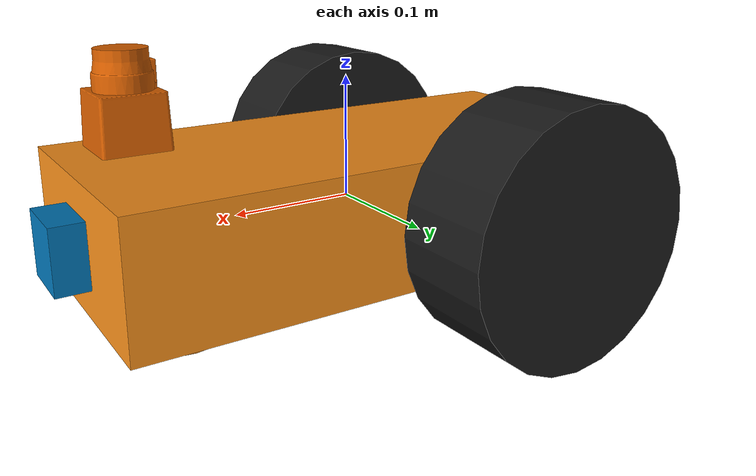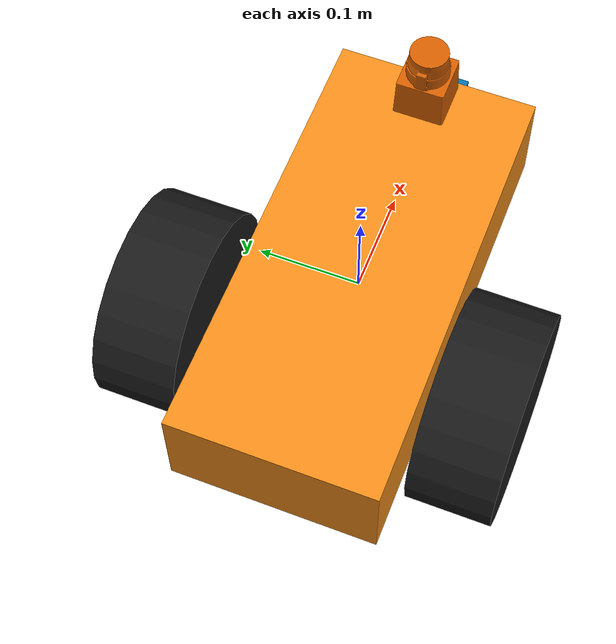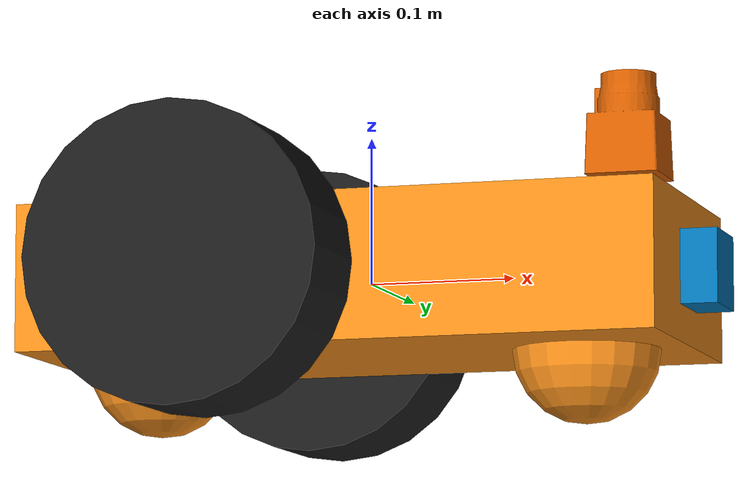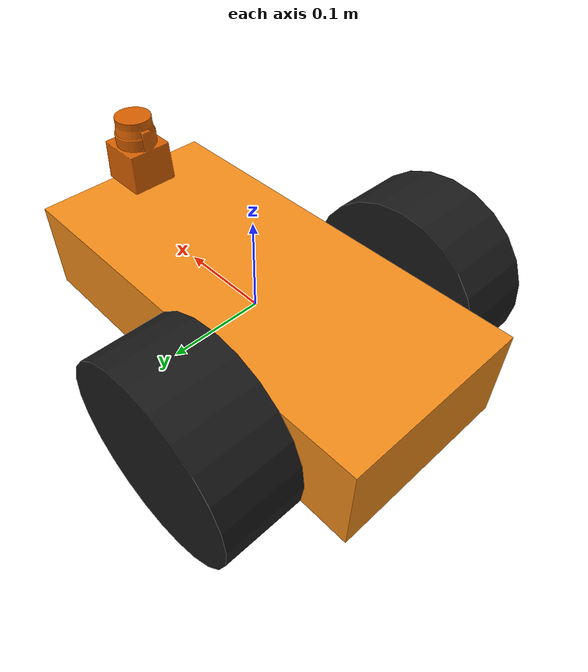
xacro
<?xml version='1.0'?>

<robot name="my_robot" xmlns:xacro="http://www.ros.org/wiki/xacro">
<xacro:include filename="$(find my_robot)/urdf/my_robot.gazebo" />

  <link name="robot_footprint"></link>

  <joint name="robot_footprint_joint" type="fixed">
    <origin xyz="0 0 0" rpy="0 0 0" />
    <parent link="robot_footprint"/>
    <child link="chassis" />
  </joint>

  <link name='chassis'>
    <pose>0 0 0.1 0 0 0</pose>

    <inertial>
      <mass value="15.0"/>
      <origin xyz="0.0 0 0" rpy=" 0 0 0"/>
      <inertia
          ixx="0.1" ixy="0" ixz="0"
          iyy="0.1" iyz="0"
          izz="0.1"
      />
    </inertial>

    <collision name='collision'>
      <origin xyz="0 0 0" rpy=" 0 0 0"/>
      <geometry>
        <box size=".44 .2 .1"/>
      </geometry>
    </collision>

    <visual name='chassis_visual'>
      <origin xyz="0 0 0" rpy=" 0 0 0"/>
      <geometry>
        <box size=".44 .2 .1"/>
      </geometry>
    </visual>

    <collision name='back_caster_collision'>
      <origin xyz="-0.15 0 -0.05" rpy=" 0 0 0"/>
      <geometry>
        <sphere radius="0.05"/>
      </geometry>
    </collision>

    <visual name='back_caster_visual'>
      <origin xyz="-0.15 0 -0.05" rpy=" 0 0 0"/>
      <geometry>
        <sphere radius="0.05"/>
      </geometry>
    </visual>

    <collision name='front_caster_collision'>
      <origin xyz="0.15 0 -0.05" rpy=" 0 0 0"/>
      <geometry>
        <sphere radius="0.05"/>
      </geometry>
    </collision>

    <visual name='front_caster_visual'>
      <origin xyz="0.15 0 -0.05" rpy=" 0 0 0"/>
      <geometry>
        <sphere radius="0.05"/>
      </geometry>
    </visual>

  </link>

  <gazebo reference="chassis">
    <material>Gazebo/Orange</material>
  </gazebo>

  <link name='left_wheel'>
   <pose>0 0 0.1 0 0 0</pose>
    <inertial>
      <mass value="5.0"/>
      <origin xyz="0.0 0 0" rpy=" 0 1.5707 1.5707"/>
      <inertia
          ixx="0.1" ixy="0" ixz="0"
          iyy="0.1" iyz="0"
          izz="0.1"
      />
    </inertial>

    <collision name='left_wheel_collision'>
      <origin xyz="0 0 0" rpy=" 0 1.5707 1.5707"/>
      <geometry>
        <cylinder radius="0.1" length="0.08"/>
      </geometry>
    </collision>

    <visual name='left_wheel_visual'>
      <origin xyz="0 0 0" rpy=" 0 1.5707 1.5707"/>
      <geometry>
        <cylinder radius="0.1" length="0.08"/>
      </geometry>
      <material name="black">
        <color rgba="0.1 0.1 0.1 1.0"/>
      </material>
    </visual>
  </link>

  <gazebo reference="left_wheel">
    <material>Gazebo/Black</material>
  </gazebo>

  <link name='right_wheel'>
   <pose>0 0 0.1 0 0 0</pose>
    <inertial>
      <mass value="5.0"/>
      <origin xyz="0.0 0 0" rpy=" 0 1.5707 1.5707"/>
      <inertia
          ixx="0.1" ixy="0" ixz="0"
          iyy="0.1" iyz="0"
          izz="0.1"
      />
    </inertial>

    <collision name='right_wheel_collision'>
      <origin xyz="0 0 0" rpy=" 0 1.5707 1.5707"/>
      <geometry>
        <cylinder radius="0.1" length="0.08"/>
      </geometry>
    </collision>

    <visual name='right_wheel_visual'>
      <origin xyz="0 0 0" rpy=" 0 1.5707 1.5707"/>
      <geometry>
        <cylinder radius="0.1" length="0.08"/>
      </geometry>
      <material name="black">
        <color rgba="0.1 0.1 0.1 1.0"/>
      </material>
    </visual>
  </link>

  <gazebo reference="right_wheel">
    <material>Gazebo/Black</material>
  </gazebo>

  <joint type="continuous" name="left_wheel_hinge">
    <origin xyz="-0.08 0.15 0" rpy="0 0 0"/>
    <child link="left_wheel"/>
    <parent link="chassis"/>
    <axis xyz="0 1 0" rpy="0 0 0"/>
    <limit effort="10000" velocity="1000"/>
    <dynamics damping="1.0" friction="1.0"/>
  </joint>

  <joint type="continuous" name="right_wheel_hinge">
    <origin xyz="-0.08 -0.15 0" rpy="0 0 0"/>
    <child link="right_wheel"/>
    <parent link="chassis"/>
    <axis xyz="0 1 0" rpy="0 0 0"/>
    <limit effort="10000" velocity="1000"/>
    <dynamics damping="1.0" friction="1.0"/>
  </joint>

  <link name='camera'>
   <pose>0 0 0 0 0 0</pose>
    <inertial>
      <mass value="0.1"/>
      <origin xyz="0 0 0" rpy=" 0 0 0"/>
      <inertia
          ixx="1e-6" ixy="0" ixz="0"
          iyy="1e-6" iyz="0"
          izz="1e-6"
      />
    <box_inertia sizeX="0.05" sizeY="0.05" sizeZ="0.05" mass="0.1">
    </box_inertia>
    </inertial>

    <collision name='camera_collision'>
      <origin xyz="0 0 0" rpy=" 0 0 0"/>
      <geometry>
         <box size="0.05 0.05 0.05"/>
      </geometry>
    </collision>

    <visual name='camera_visual'>
      <origin xyz="0 0 0" rpy=" 0 0 0"/>
      <geometry>
         <box size="0.05 0.05 0.05"/>
      </geometry>
    </visual>
  </link>

  <joint type="fixed" name="camera_joint">
    <origin xyz="0.22 0 0" rpy="0 0 0"/>
    <child link="camera"/>
    <parent link="chassis"/>
    <axis xyz="0 1 0" rpy="0 0 0"/>
  </joint>

  <link name="hokuyo">
   <pose>0 0 0 0 0 0</pose>
    <inertial>
      <mass value="1e-5"/>
      <origin xyz="0 0 0" rpy=" 0 0 0"/>
      <inertia
          ixx="1e-6" ixy="0" ixz="0"
          iyy="1e-6" iyz="0"
          izz="1e-6"
      />
    </inertial>

    <collision name='hokuyo_collision'>
      <origin xyz="0 0 0" rpy=" 0 0 0"/>
     <geometry>
         <mesh filename="package://my_robot/meshes/hokuyo.dae"/>
      </geometry>
    </collision>

    <visual name='hokuyo_visual'>
         <origin xyz="0 0 0" rpy=" 0 0 0"/>
      <geometry>
         <mesh filename="package://my_robot/meshes/hokuyo.dae"/>
      </geometry>
    </visual>
  </link>

  <joint type="fixed" name="hokuyo_joint">
    <origin xyz="0.18 0 0.1" rpy="0 0 0"/>
    <child link="hokuyo"/>
    <parent link="chassis"/>
    <axis xyz="0 1 0" rpy="0 0 0"/>
  </joint>

  <link name="camera_link_optical">
  </link>

  <joint name="camera_optical_joint" type="fixed">
    <origin xyz="0 0 0" rpy="-1.5707 0 -1.5707"/>
    <parent link="camera"/>
    <child link="camera_link_optical"/>
  </joint>

</robot>
